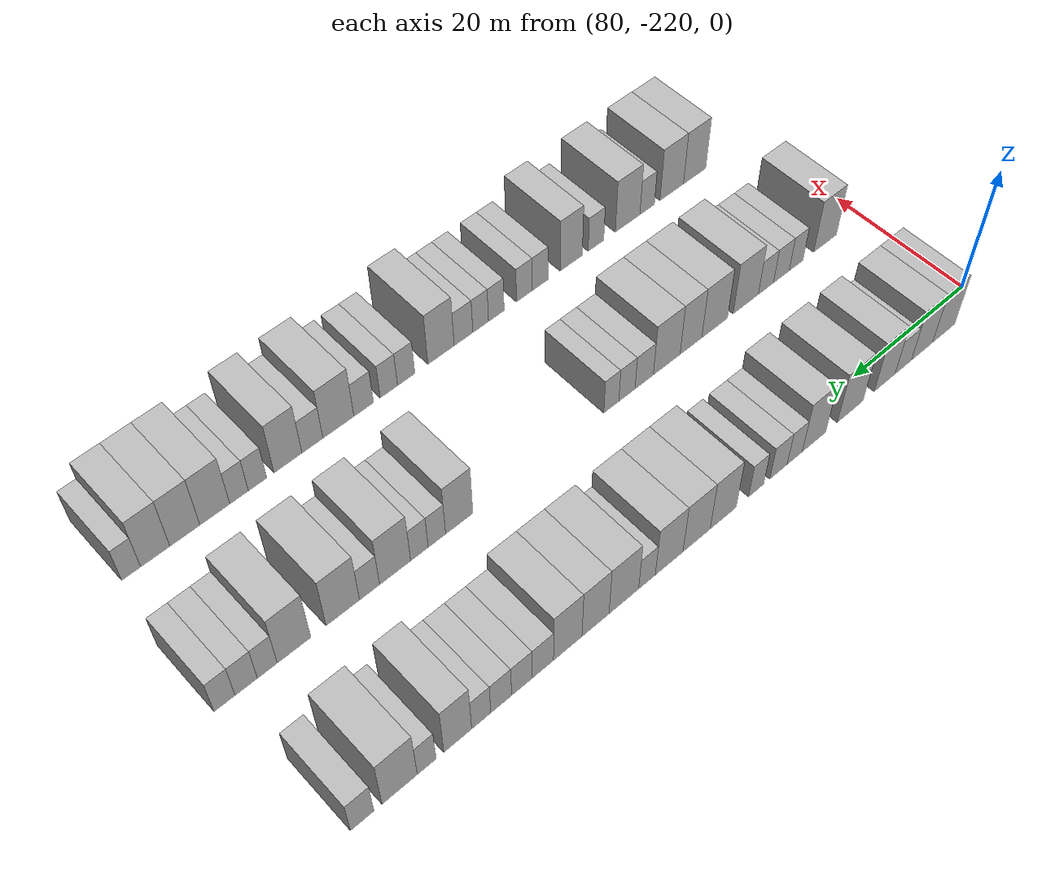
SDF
<sdf version="1.6">
 <world name="default">
  <model name="building_560">
   <static>1</static>
   <pose>82.0000 -212.7212 0 0.000000 0.000000 0.000000</pose>
   <link name="link">
    <pose>0 0 4.50 0 0 0</pose>
    <collision name="collision"><geometry><box><size>10.0000 4.1213 9.0000</size></box></geometry></collision>
    <visual name="visual">
     <cast_shadows>0</cast_shadows>
     <geometry><box><size>10.0000 4.1213 9.0000</size></box></geometry>
     <material>
      <script>
       <uri>model://HANNAS_wall/materials/scripts</uri>
       <uri>model://HANNAS_wall/materials/textures</uri>
       <name>vrc/HANNAS_wall</name>
      </script>
     </material>
    </visual>
   </link>
  </model>
  <model name="building_561">
   <static>1</static>
   <pose>82.0000 -208.7023 0 0.000000 0.000000 0.000000</pose>
   <link name="link">
    <pose>0 0 4.50 0 0 0</pose>
    <collision name="collision"><geometry><box><size>10.0000 3.9165 9.0000</size></box></geometry></collision>
    <visual name="visual">
     <cast_shadows>0</cast_shadows>
     <geometry><box><size>10.0000 3.9165 9.0000</size></box></geometry>
     <material>
      <script>
       <uri>model://HANNAS_wall/materials/scripts</uri>
       <uri>model://HANNAS_wall/materials/textures</uri>
       <name>vrc/HANNAS_wall</name>
      </script>
     </material>
    </visual>
   </link>
  </model>
  <model name="building_562">
   <static>1</static>
   <pose>82.0000 -205.2701 0 0.000000 0.000000 0.000000</pose>
   <link name="link">
    <pose>0 0 3.00 0 0 0</pose>
    <collision name="collision"><geometry><box><size>10.0000 2.9480 6.0000</size></box></geometry></collision>
    <visual name="visual">
     <cast_shadows>0</cast_shadows>
     <geometry><box><size>10.0000 2.9480 6.0000</size></box></geometry>
     <material>
      <script>
       <uri>model://HANNAS_wall/materials/scripts</uri>
       <uri>model://HANNAS_wall/materials/textures</uri>
       <name>vrc/HANNAS_wall</name>
      </script>
     </material>
    </visual>
   </link>
  </model>
  <model name="building_563">
   <static>1</static>
   <pose>82.0000 -201.9273 0 0.000000 0.000000 0.000000</pose>
   <link name="link">
    <pose>0 0 4.50 0 0 0</pose>
    <collision name="collision"><geometry><box><size>10.0000 3.7375 9.0000</size></box></geometry></collision>
    <visual name="visual">
     <cast_shadows>0</cast_shadows>
     <geometry><box><size>10.0000 3.7375 9.0000</size></box></geometry>
     <material>
      <script>
       <uri>model://HANNAS_wall/materials/scripts</uri>
       <uri>model://HANNAS_wall/materials/textures</uri>
       <name>vrc/HANNAS_wall</name>
      </script>
     </material>
    </visual>
   </link>
  </model>
  <model name="building_564">
   <static>1</static>
   <pose>82.0000 -195.8208 0 0.000000 0.000000 0.000000</pose>
   <link name="link">
    <pose>0 0 4.50 0 0 0</pose>
    <collision name="collision"><geometry><box><size>10.0000 4.4755 9.0000</size></box></geometry></collision>
    <visual name="visual">
     <cast_shadows>0</cast_shadows>
     <geometry><box><size>10.0000 4.4755 9.0000</size></box></geometry>
     <material>
      <script>
       <uri>model://HANNAS_wall/materials/scripts</uri>
       <uri>model://HANNAS_wall/materials/textures</uri>
       <name>vrc/HANNAS_wall</name>
      </script>
     </material>
    </visual>
   </link>
  </model>
  <model name="building_565">
   <static>1</static>
   <pose>82.0000 -189.5889 0 0.000000 0.000000 0.000000</pose>
   <link name="link">
    <pose>0 0 4.50 0 0 0</pose>
    <collision name="collision"><geometry><box><size>10.0000 3.9884 9.0000</size></box></geometry></collision>
    <visual name="visual">
     <cast_shadows>0</cast_shadows>
     <geometry><box><size>10.0000 3.9884 9.0000</size></box></geometry>
     <material>
      <script>
       <uri>model://HANNAS_wall/materials/scripts</uri>
       <uri>model://HANNAS_wall/materials/textures</uri>
       <name>vrc/HANNAS_wall</name>
      </script>
     </material>
    </visual>
   </link>
  </model>
  <model name="building_566">
   <static>1</static>
   <pose>82.0000 -186.3417 0 0.000000 0.000000 0.000000</pose>
   <link name="link">
    <pose>0 0 3.00 0 0 0</pose>
    <collision name="collision"><geometry><box><size>10.0000 2.5060 6.0000</size></box></geometry></collision>
    <visual name="visual">
     <cast_shadows>0</cast_shadows>
     <geometry><box><size>10.0000 2.5060 6.0000</size></box></geometry>
     <material>
      <script>
       <uri>model://HANNAS_wall/materials/scripts</uri>
       <uri>model://HANNAS_wall/materials/textures</uri>
       <name>vrc/HANNAS_wall</name>
      </script>
     </material>
    </visual>
   </link>
  </model>
  <model name="building_567">
   <static>1</static>
   <pose>82.0000 -183.6561 0 0.000000 0.000000 0.000000</pose>
   <link name="link">
    <pose>0 0 3.00 0 0 0</pose>
    <collision name="collision"><geometry><box><size>10.0000 2.8654 6.0000</size></box></geometry></collision>
    <visual name="visual">
     <cast_shadows>0</cast_shadows>
     <geometry><box><size>10.0000 2.8654 6.0000</size></box></geometry>
     <material>
      <script>
       <uri>model://HANNAS_wall/materials/scripts</uri>
       <uri>model://HANNAS_wall/materials/textures</uri>
       <name>vrc/HANNAS_wall</name>
      </script>
     </material>
    </visual>
   </link>
  </model>
  <model name="building_568">
   <static>1</static>
   <pose>82.0000 -179.9999 0 0.000000 0.000000 0.000000</pose>
   <link name="link">
    <pose>0 0 3.00 0 0 0</pose>
    <collision name="collision"><geometry><box><size>10.0000 2.4469 6.0000</size></box></geometry></collision>
    <visual name="visual">
     <cast_shadows>0</cast_shadows>
     <geometry><box><size>10.0000 2.4469 6.0000</size></box></geometry>
     <material>
      <script>
       <uri>model://HANNAS_wall/materials/scripts</uri>
       <uri>model://HANNAS_wall/materials/textures</uri>
       <name>vrc/HANNAS_wall</name>
      </script>
     </material>
    </visual>
   </link>
  </model>
  <model name="building_569">
   <static>1</static>
   <pose>82.0000 -174.7113 0 0.000000 0.000000 0.000000</pose>
   <link name="link">
    <pose>0 0 4.50 0 0 0</pose>
    <collision name="collision"><geometry><box><size>10.0000 4.1304 9.0000</size></box></geometry></collision>
    <visual name="visual">
     <cast_shadows>0</cast_shadows>
     <geometry><box><size>10.0000 4.1304 9.0000</size></box></geometry>
     <material>
      <script>
       <uri>model://HANNAS_wall/materials/scripts</uri>
       <uri>model://HANNAS_wall/materials/textures</uri>
       <name>vrc/HANNAS_wall</name>
      </script>
     </material>
    </visual>
   </link>
  </model>
  <model name="building_570">
   <static>1</static>
   <pose>82.0000 -170.5324 0 0.000000 0.000000 0.000000</pose>
   <link name="link">
    <pose>0 0 4.50 0 0 0</pose>
    <collision name="collision"><geometry><box><size>10.0000 4.2274 9.0000</size></box></geometry></collision>
    <visual name="visual">
     <cast_shadows>0</cast_shadows>
     <geometry><box><size>10.0000 4.2274 9.0000</size></box></geometry>
     <material>
      <script>
       <uri>model://HANNAS_wall/materials/scripts</uri>
       <uri>model://HANNAS_wall/materials/textures</uri>
       <name>vrc/HANNAS_wall</name>
      </script>
     </material>
    </visual>
   </link>
  </model>
  <model name="building_571">
   <static>1</static>
   <pose>82.0000 -166.3109 0 0.000000 0.000000 0.000000</pose>
   <link name="link">
    <pose>0 0 4.50 0 0 0</pose>
    <collision name="collision"><geometry><box><size>10.0000 4.2156 9.0000</size></box></geometry></collision>
    <visual name="visual">
     <cast_shadows>0</cast_shadows>
     <geometry><box><size>10.0000 4.2156 9.0000</size></box></geometry>
     <material>
      <script>
       <uri>model://HANNAS_wall/materials/scripts</uri>
       <uri>model://HANNAS_wall/materials/textures</uri>
       <name>vrc/HANNAS_wall</name>
      </script>
     </material>
    </visual>
   </link>
  </model>
  <model name="building_572">
   <static>1</static>
   <pose>82.0000 -162.9552 0 0.000000 0.000000 0.000000</pose>
   <link name="link">
    <pose>0 0 3.00 0 0 0</pose>
    <collision name="collision"><geometry><box><size>10.0000 2.4959 6.0000</size></box></geometry></collision>
    <visual name="visual">
     <cast_shadows>0</cast_shadows>
     <geometry><box><size>10.0000 2.4959 6.0000</size></box></geometry>
     <material>
      <script>
       <uri>model://HANNAS_wall/materials/scripts</uri>
       <uri>model://HANNAS_wall/materials/textures</uri>
       <name>vrc/HANNAS_wall</name>
      </script>
     </material>
    </visual>
   </link>
  </model>
  <model name="building_573">
   <static>1</static>
   <pose>82.0000 -159.5243 0 0.000000 0.000000 0.000000</pose>
   <link name="link">
    <pose>0 0 4.50 0 0 0</pose>
    <collision name="collision"><geometry><box><size>10.0000 4.3659 9.0000</size></box></geometry></collision>
    <visual name="visual">
     <cast_shadows>0</cast_shadows>
     <geometry><box><size>10.0000 4.3659 9.0000</size></box></geometry>
     <material>
      <script>
       <uri>model://HANNAS_wall/materials/scripts</uri>
       <uri>model://HANNAS_wall/materials/textures</uri>
       <name>vrc/HANNAS_wall</name>
      </script>
     </material>
    </visual>
   </link>
  </model>
  <model name="building_574">
   <static>1</static>
   <pose>82.0000 -155.3873 0 0.000000 0.000000 0.000000</pose>
   <link name="link">
    <pose>0 0 4.50 0 0 0</pose>
    <collision name="collision"><geometry><box><size>10.0000 3.9081 9.0000</size></box></geometry></collision>
    <visual name="visual">
     <cast_shadows>0</cast_shadows>
     <geometry><box><size>10.0000 3.9081 9.0000</size></box></geometry>
     <material>
      <script>
       <uri>model://HANNAS_wall/materials/scripts</uri>
       <uri>model://HANNAS_wall/materials/textures</uri>
       <name>vrc/HANNAS_wall</name>
      </script>
     </material>
    </visual>
   </link>
  </model>
  <model name="building_575">
   <static>1</static>
   <pose>82.0000 -151.4127 0 0.000000 0.000000 0.000000</pose>
   <link name="link">
    <pose>0 0 4.50 0 0 0</pose>
    <collision name="collision"><geometry><box><size>10.0000 4.0412 9.0000</size></box></geometry></collision>
    <visual name="visual">
     <cast_shadows>0</cast_shadows>
     <geometry><box><size>10.0000 4.0412 9.0000</size></box></geometry>
     <material>
      <script>
       <uri>model://HANNAS_wall/materials/scripts</uri>
       <uri>model://HANNAS_wall/materials/textures</uri>
       <name>vrc/HANNAS_wall</name>
      </script>
     </material>
    </visual>
   </link>
  </model>
  <model name="building_576">
   <static>1</static>
   <pose>82.0000 -147.9124 0 0.000000 0.000000 0.000000</pose>
   <link name="link">
    <pose>0 0 3.00 0 0 0</pose>
    <collision name="collision"><geometry><box><size>10.0000 2.9593 6.0000</size></box></geometry></collision>
    <visual name="visual">
     <cast_shadows>0</cast_shadows>
     <geometry><box><size>10.0000 2.9593 6.0000</size></box></geometry>
     <material>
      <script>
       <uri>model://HANNAS_wall/materials/scripts</uri>
       <uri>model://HANNAS_wall/materials/textures</uri>
       <name>vrc/HANNAS_wall</name>
      </script>
     </material>
    </visual>
   </link>
  </model>
  <model name="building_577">
   <static>1</static>
   <pose>82.0000 -145.0148 0 0.000000 0.000000 0.000000</pose>
   <link name="link">
    <pose>0 0 3.00 0 0 0</pose>
    <collision name="collision"><geometry><box><size>10.0000 2.8359 6.0000</size></box></geometry></collision>
    <visual name="visual">
     <cast_shadows>0</cast_shadows>
     <geometry><box><size>10.0000 2.8359 6.0000</size></box></geometry>
     <material>
      <script>
       <uri>model://HANNAS_wall/materials/scripts</uri>
       <uri>model://HANNAS_wall/materials/textures</uri>
       <name>vrc/HANNAS_wall</name>
      </script>
     </material>
    </visual>
   </link>
  </model>
  <model name="building_578">
   <static>1</static>
   <pose>82.0000 -142.1846 0 0.000000 0.000000 0.000000</pose>
   <link name="link">
    <pose>0 0 3.00 0 0 0</pose>
    <collision name="collision"><geometry><box><size>10.0000 2.8244 6.0000</size></box></geometry></collision>
    <visual name="visual">
     <cast_shadows>0</cast_shadows>
     <geometry><box><size>10.0000 2.8244 6.0000</size></box></geometry>
     <material>
      <script>
       <uri>model://HANNAS_wall/materials/scripts</uri>
       <uri>model://HANNAS_wall/materials/textures</uri>
       <name>vrc/HANNAS_wall</name>
      </script>
     </material>
    </visual>
   </link>
  </model>
  <model name="building_579">
   <static>1</static>
   <pose>82.0000 -139.4995 0 0.000000 0.000000 0.000000</pose>
   <link name="link">
    <pose>0 0 3.00 0 0 0</pose>
    <collision name="collision"><geometry><box><size>10.0000 2.5458 6.0000</size></box></geometry></collision>
    <visual name="visual">
     <cast_shadows>0</cast_shadows>
     <geometry><box><size>10.0000 2.5458 6.0000</size></box></geometry>
     <material>
      <script>
       <uri>model://HANNAS_wall/materials/scripts</uri>
       <uri>model://HANNAS_wall/materials/textures</uri>
       <name>vrc/HANNAS_wall</name>
      </script>
     </material>
    </visual>
   </link>
  </model>
  <model name="building_580">
   <static>1</static>
   <pose>82.0000 -136.3912 0 0.000000 0.000000 0.000000</pose>
   <link name="link">
    <pose>0 0 4.50 0 0 0</pose>
    <collision name="collision"><geometry><box><size>10.0000 3.6709 9.0000</size></box></geometry></collision>
    <visual name="visual">
     <cast_shadows>0</cast_shadows>
     <geometry><box><size>10.0000 3.6709 9.0000</size></box></geometry>
     <material>
      <script>
       <uri>model://HANNAS_wall/materials/scripts</uri>
       <uri>model://HANNAS_wall/materials/textures</uri>
       <name>vrc/HANNAS_wall</name>
      </script>
     </material>
    </visual>
   </link>
  </model>
  <model name="building_581">
   <static>1</static>
   <pose>82.0000 -132.3411 0 0.000000 0.000000 0.000000</pose>
   <link name="link">
    <pose>0 0 3.00 0 0 0</pose>
    <collision name="collision"><geometry><box><size>10.0000 2.4294 6.0000</size></box></geometry></collision>
    <visual name="visual">
     <cast_shadows>0</cast_shadows>
     <geometry><box><size>10.0000 2.4294 6.0000</size></box></geometry>
     <material>
      <script>
       <uri>model://HANNAS_wall/materials/scripts</uri>
       <uri>model://HANNAS_wall/materials/textures</uri>
       <name>vrc/HANNAS_wall</name>
      </script>
     </material>
    </visual>
   </link>
  </model>
  <model name="building_582">
   <static>1</static>
   <pose>82.0000 -128.8916 0 0.000000 0.000000 0.000000</pose>
   <link name="link">
    <pose>0 0 4.50 0 0 0</pose>
    <collision name="collision"><geometry><box><size>10.0000 4.4695 9.0000</size></box></geometry></collision>
    <visual name="visual">
     <cast_shadows>0</cast_shadows>
     <geometry><box><size>10.0000 4.4695 9.0000</size></box></geometry>
     <material>
      <script>
       <uri>model://HANNAS_wall/materials/scripts</uri>
       <uri>model://HANNAS_wall/materials/textures</uri>
       <name>vrc/HANNAS_wall</name>
      </script>
     </material>
    </visual>
   </link>
  </model>
  <model name="building_583">
   <static>1</static>
   <pose>82.0000 -124.2024 0 0.000000 0.000000 0.000000</pose>
   <link name="link">
    <pose>0 0 3.00 0 0 0</pose>
    <collision name="collision"><geometry><box><size>10.0000 2.9090 6.0000</size></box></geometry></collision>
    <visual name="visual">
     <cast_shadows>0</cast_shadows>
     <geometry><box><size>10.0000 2.9090 6.0000</size></box></geometry>
     <material>
      <script>
       <uri>model://HANNAS_wall/materials/scripts</uri>
       <uri>model://HANNAS_wall/materials/textures</uri>
       <name>vrc/HANNAS_wall</name>
      </script>
     </material>
    </visual>
   </link>
  </model>
  <model name="building_730">
   <static>1</static>
   <pose>101.0000 -213.0917 0 0.000000 0.000000 0.000000</pose>
   <link name="link">
    <pose>0 0 4.50 0 0 0</pose>
    <collision name="collision"><geometry><box><size>10.0000 4.2503 9.0000</size></box></geometry></collision>
    <visual name="visual">
     <cast_shadows>0</cast_shadows>
     <geometry><box><size>10.0000 4.2503 9.0000</size></box></geometry>
     <material>
      <script>
       <uri>model://HANNAS_wall/materials/scripts</uri>
       <uri>model://HANNAS_wall/materials/textures</uri>
       <name>vrc/HANNAS_wall</name>
      </script>
     </material>
    </visual>
   </link>
  </model>
  <model name="building_731">
   <static>1</static>
   <pose>101.0000 -207.7131 0 0.000000 0.000000 0.000000</pose>
   <link name="link">
    <pose>0 0 3.00 0 0 0</pose>
    <collision name="collision"><geometry><box><size>10.0000 2.5070 6.0000</size></box></geometry></collision>
    <visual name="visual">
     <cast_shadows>0</cast_shadows>
     <geometry><box><size>10.0000 2.5070 6.0000</size></box></geometry>
     <material>
      <script>
       <uri>model://HANNAS_wall/materials/scripts</uri>
       <uri>model://HANNAS_wall/materials/textures</uri>
       <name>vrc/HANNAS_wall</name>
      </script>
     </material>
    </visual>
   </link>
  </model>
  <model name="building_732">
   <static>1</static>
   <pose>101.0000 -205.0413 0 0.000000 0.000000 0.000000</pose>
   <link name="link">
    <pose>0 0 3.00 0 0 0</pose>
    <collision name="collision"><geometry><box><size>10.0000 2.8366 6.0000</size></box></geometry></collision>
    <visual name="visual">
     <cast_shadows>0</cast_shadows>
     <geometry><box><size>10.0000 2.8366 6.0000</size></box></geometry>
     <material>
      <script>
       <uri>model://HANNAS_wall/materials/scripts</uri>
       <uri>model://HANNAS_wall/materials/textures</uri>
       <name>vrc/HANNAS_wall</name>
      </script>
     </material>
    </visual>
   </link>
  </model>
  <model name="building_733">
   <static>1</static>
   <pose>101.0000 -202.2657 0 0.000000 0.000000 0.000000</pose>
   <link name="link">
    <pose>0 0 3.00 0 0 0</pose>
    <collision name="collision"><geometry><box><size>10.0000 2.7144 6.0000</size></box></geometry></collision>
    <visual name="visual">
     <cast_shadows>0</cast_shadows>
     <geometry><box><size>10.0000 2.7144 6.0000</size></box></geometry>
     <material>
      <script>
       <uri>model://HANNAS_wall/materials/scripts</uri>
       <uri>model://HANNAS_wall/materials/textures</uri>
       <name>vrc/HANNAS_wall</name>
      </script>
     </material>
    </visual>
   </link>
  </model>
  <model name="building_734">
   <static>1</static>
   <pose>101.0000 -198.6866 0 0.000000 0.000000 0.000000</pose>
   <link name="link">
    <pose>0 0 4.50 0 0 0</pose>
    <collision name="collision"><geometry><box><size>10.0000 4.4439 9.0000</size></box></geometry></collision>
    <visual name="visual">
     <cast_shadows>0</cast_shadows>
     <geometry><box><size>10.0000 4.4439 9.0000</size></box></geometry>
     <material>
      <script>
       <uri>model://HANNAS_wall/materials/scripts</uri>
       <uri>model://HANNAS_wall/materials/textures</uri>
       <name>vrc/HANNAS_wall</name>
      </script>
     </material>
    </visual>
   </link>
  </model>
  <model name="building_735">
   <static>1</static>
   <pose>101.0000 -193.2550 0 0.000000 0.000000 0.000000</pose>
   <link name="link">
    <pose>0 0 4.50 0 0 0</pose>
    <collision name="collision"><geometry><box><size>10.0000 4.4194 9.0000</size></box></geometry></collision>
    <visual name="visual">
     <cast_shadows>0</cast_shadows>
     <geometry><box><size>10.0000 4.4194 9.0000</size></box></geometry>
     <material>
      <script>
       <uri>model://HANNAS_wall/materials/scripts</uri>
       <uri>model://HANNAS_wall/materials/textures</uri>
       <name>vrc/HANNAS_wall</name>
      </script>
     </material>
    </visual>
   </link>
  </model>
  <model name="building_736">
   <static>1</static>
   <pose>101.0000 -189.2058 0 0.000000 0.000000 0.000000</pose>
   <link name="link">
    <pose>0 0 4.50 0 0 0</pose>
    <collision name="collision"><geometry><box><size>10.0000 3.6789 9.0000</size></box></geometry></collision>
    <visual name="visual">
     <cast_shadows>0</cast_shadows>
     <geometry><box><size>10.0000 3.6789 9.0000</size></box></geometry>
     <material>
      <script>
       <uri>model://HANNAS_wall/materials/scripts</uri>
       <uri>model://HANNAS_wall/materials/textures</uri>
       <name>vrc/HANNAS_wall</name>
      </script>
     </material>
    </visual>
   </link>
  </model>
  <model name="building_737">
   <static>1</static>
   <pose>101.0000 -185.1418 0 0.000000 0.000000 0.000000</pose>
   <link name="link">
    <pose>0 0 4.50 0 0 0</pose>
    <collision name="collision"><geometry><box><size>10.0000 4.4492 9.0000</size></box></geometry></collision>
    <visual name="visual">
     <cast_shadows>0</cast_shadows>
     <geometry><box><size>10.0000 4.4492 9.0000</size></box></geometry>
     <material>
      <script>
       <uri>model://HANNAS_wall/materials/scripts</uri>
       <uri>model://HANNAS_wall/materials/textures</uri>
       <name>vrc/HANNAS_wall</name>
      </script>
     </material>
    </visual>
   </link>
  </model>
  <model name="building_738">
   <static>1</static>
   <pose>101.0000 -181.4185 0 0.000000 0.000000 0.000000</pose>
   <link name="link">
    <pose>0 0 3.00 0 0 0</pose>
    <collision name="collision"><geometry><box><size>10.0000 2.9974 6.0000</size></box></geometry></collision>
    <visual name="visual">
     <cast_shadows>0</cast_shadows>
     <geometry><box><size>10.0000 2.9974 6.0000</size></box></geometry>
     <material>
      <script>
       <uri>model://HANNAS_wall/materials/scripts</uri>
       <uri>model://HANNAS_wall/materials/textures</uri>
       <name>vrc/HANNAS_wall</name>
      </script>
     </material>
    </visual>
   </link>
  </model>
  <model name="building_739">
   <static>1</static>
   <pose>101.0000 -178.6067 0 0.000000 0.000000 0.000000</pose>
   <link name="link">
    <pose>0 0 3.00 0 0 0</pose>
    <collision name="collision"><geometry><box><size>10.0000 2.6262 6.0000</size></box></geometry></collision>
    <visual name="visual">
     <cast_shadows>0</cast_shadows>
     <geometry><box><size>10.0000 2.6262 6.0000</size></box></geometry>
     <material>
      <script>
       <uri>model://HANNAS_wall/materials/scripts</uri>
       <uri>model://HANNAS_wall/materials/textures</uri>
       <name>vrc/HANNAS_wall</name>
      </script>
     </material>
    </visual>
   </link>
  </model>
  <model name="building_740">
   <static>1</static>
   <pose>101.0000 -176.0919 0 0.000000 0.000000 0.000000</pose>
   <link name="link">
    <pose>0 0 3.00 0 0 0</pose>
    <collision name="collision"><geometry><box><size>10.0000 2.4033 6.0000</size></box></geometry></collision>
    <visual name="visual">
     <cast_shadows>0</cast_shadows>
     <geometry><box><size>10.0000 2.4033 6.0000</size></box></geometry>
     <material>
      <script>
       <uri>model://HANNAS_wall/materials/scripts</uri>
       <uri>model://HANNAS_wall/materials/textures</uri>
       <name>vrc/HANNAS_wall</name>
      </script>
     </material>
    </visual>
   </link>
  </model>
  <model name="building_741">
   <static>1</static>
   <pose>101.0000 -153.0102 0 0.000000 0.000000 0.000000</pose>
   <link name="link">
    <pose>0 0 4.50 0 0 0</pose>
    <collision name="collision"><geometry><box><size>10.0000 3.9201 9.0000</size></box></geometry></collision>
    <visual name="visual">
     <cast_shadows>0</cast_shadows>
     <geometry><box><size>10.0000 3.9201 9.0000</size></box></geometry>
     <material>
      <script>
       <uri>model://HANNAS_wall/materials/scripts</uri>
       <uri>model://HANNAS_wall/materials/textures</uri>
       <name>vrc/HANNAS_wall</name>
      </script>
     </material>
    </visual>
   </link>
  </model>
  <model name="building_742">
   <static>1</static>
   <pose>101.0000 -149.8137 0 0.000000 0.000000 0.000000</pose>
   <link name="link">
    <pose>0 0 3.00 0 0 0</pose>
    <collision name="collision"><geometry><box><size>10.0000 2.4729 6.0000</size></box></geometry></collision>
    <visual name="visual">
     <cast_shadows>0</cast_shadows>
     <geometry><box><size>10.0000 2.4729 6.0000</size></box></geometry>
     <material>
      <script>
       <uri>model://HANNAS_wall/materials/scripts</uri>
       <uri>model://HANNAS_wall/materials/textures</uri>
       <name>vrc/HANNAS_wall</name>
      </script>
     </material>
    </visual>
   </link>
  </model>
  <model name="building_743">
   <static>1</static>
   <pose>101.0000 -147.3478 0 0.000000 0.000000 0.000000</pose>
   <link name="link">
    <pose>0 0 3.00 0 0 0</pose>
    <collision name="collision"><geometry><box><size>10.0000 2.4589 6.0000</size></box></geometry></collision>
    <visual name="visual">
     <cast_shadows>0</cast_shadows>
     <geometry><box><size>10.0000 2.4589 6.0000</size></box></geometry>
     <material>
      <script>
       <uri>model://HANNAS_wall/materials/scripts</uri>
       <uri>model://HANNAS_wall/materials/textures</uri>
       <name>vrc/HANNAS_wall</name>
      </script>
     </material>
    </visual>
   </link>
  </model>
  <model name="building_744">
   <static>1</static>
   <pose>101.0000 -143.9737 0 0.000000 0.000000 0.000000</pose>
   <link name="link">
    <pose>0 0 4.50 0 0 0</pose>
    <collision name="collision"><geometry><box><size>10.0000 4.2894 9.0000</size></box></geometry></collision>
    <visual name="visual">
     <cast_shadows>0</cast_shadows>
     <geometry><box><size>10.0000 4.2894 9.0000</size></box></geometry>
     <material>
      <script>
       <uri>model://HANNAS_wall/materials/scripts</uri>
       <uri>model://HANNAS_wall/materials/textures</uri>
       <name>vrc/HANNAS_wall</name>
      </script>
     </material>
    </visual>
   </link>
  </model>
  <model name="building_745">
   <static>1</static>
   <pose>101.0000 -140.4650 0 0.000000 0.000000 0.000000</pose>
   <link name="link">
    <pose>0 0 3.00 0 0 0</pose>
    <collision name="collision"><geometry><box><size>10.0000 2.7279 6.0000</size></box></geometry></collision>
    <visual name="visual">
     <cast_shadows>0</cast_shadows>
     <geometry><box><size>10.0000 2.7279 6.0000</size></box></geometry>
     <material>
      <script>
       <uri>model://HANNAS_wall/materials/scripts</uri>
       <uri>model://HANNAS_wall/materials/textures</uri>
       <name>vrc/HANNAS_wall</name>
      </script>
     </material>
    </visual>
   </link>
  </model>
  <model name="building_746">
   <static>1</static>
   <pose>101.0000 -136.8620 0 0.000000 0.000000 0.000000</pose>
   <link name="link">
    <pose>0 0 4.50 0 0 0</pose>
    <collision name="collision"><geometry><box><size>10.0000 4.4781 9.0000</size></box></geometry></collision>
    <visual name="visual">
     <cast_shadows>0</cast_shadows>
     <geometry><box><size>10.0000 4.4781 9.0000</size></box></geometry>
     <material>
      <script>
       <uri>model://HANNAS_wall/materials/scripts</uri>
       <uri>model://HANNAS_wall/materials/textures</uri>
       <name>vrc/HANNAS_wall</name>
      </script>
     </material>
    </visual>
   </link>
  </model>
  <model name="building_747">
   <static>1</static>
   <pose>101.0000 -130.4529 0 0.000000 0.000000 0.000000</pose>
   <link name="link">
    <pose>0 0 4.50 0 0 0</pose>
    <collision name="collision"><geometry><box><size>10.0000 4.3402 9.0000</size></box></geometry></collision>
    <visual name="visual">
     <cast_shadows>0</cast_shadows>
     <geometry><box><size>10.0000 4.3402 9.0000</size></box></geometry>
     <material>
      <script>
       <uri>model://HANNAS_wall/materials/scripts</uri>
       <uri>model://HANNAS_wall/materials/textures</uri>
       <name>vrc/HANNAS_wall</name>
      </script>
     </material>
    </visual>
   </link>
  </model>
  <model name="building_748">
   <static>1</static>
   <pose>101.0000 -127.0179 0 0.000000 0.000000 0.000000</pose>
   <link name="link">
    <pose>0 0 3.00 0 0 0</pose>
    <collision name="collision"><geometry><box><size>10.0000 2.5299 6.0000</size></box></geometry></collision>
    <visual name="visual">
     <cast_shadows>0</cast_shadows>
     <geometry><box><size>10.0000 2.5299 6.0000</size></box></geometry>
     <material>
      <script>
       <uri>model://HANNAS_wall/materials/scripts</uri>
       <uri>model://HANNAS_wall/materials/textures</uri>
       <name>vrc/HANNAS_wall</name>
      </script>
     </material>
    </visual>
   </link>
  </model>
  <model name="building_749">
   <static>1</static>
   <pose>101.0000 -124.3508 0 0.000000 0.000000 0.000000</pose>
   <link name="link">
    <pose>0 0 3.00 0 0 0</pose>
    <collision name="collision"><geometry><box><size>10.0000 2.8043 6.0000</size></box></geometry></collision>
    <visual name="visual">
     <cast_shadows>0</cast_shadows>
     <geometry><box><size>10.0000 2.8043 6.0000</size></box></geometry>
     <material>
      <script>
       <uri>model://HANNAS_wall/materials/scripts</uri>
       <uri>model://HANNAS_wall/materials/textures</uri>
       <name>vrc/HANNAS_wall</name>
      </script>
     </material>
    </visual>
   </link>
  </model>
  <model name="building_750">
   <static>1</static>
   <pose>101.0000 -121.6426 0 0.000000 0.000000 0.000000</pose>
   <link name="link">
    <pose>0 0 3.00 0 0 0</pose>
    <collision name="collision"><geometry><box><size>10.0000 2.6121 6.0000</size></box></geometry></collision>
    <visual name="visual">
     <cast_shadows>0</cast_shadows>
     <geometry><box><size>10.0000 2.6121 6.0000</size></box></geometry>
     <material>
      <script>
       <uri>model://HANNAS_wall/materials/scripts</uri>
       <uri>model://HANNAS_wall/materials/textures</uri>
       <name>vrc/HANNAS_wall</name>
      </script>
     </material>
    </visual>
   </link>
  </model>
  <model name="building_909">
   <static>1</static>
   <pose>120.0000 -209.4309 0 0.000000 0.000000 0.000000</pose>
   <link name="link">
    <pose>0 0 4.50 0 0 0</pose>
    <collision name="collision"><geometry><box><size>10.0000 4.0896 9.0000</size></box></geometry></collision>
    <visual name="visual">
     <cast_shadows>0</cast_shadows>
     <geometry><box><size>10.0000 4.0896 9.0000</size></box></geometry>
     <material>
      <script>
       <uri>model://HANNAS_wall/materials/scripts</uri>
       <uri>model://HANNAS_wall/materials/textures</uri>
       <name>vrc/HANNAS_wall</name>
      </script>
     </material>
    </visual>
   </link>
  </model>
  <model name="building_910">
   <static>1</static>
   <pose>120.0000 -205.2483 0 0.000000 0.000000 0.000000</pose>
   <link name="link">
    <pose>0 0 4.50 0 0 0</pose>
    <collision name="collision"><geometry><box><size>10.0000 4.2755 9.0000</size></box></geometry></collision>
    <visual name="visual">
     <cast_shadows>0</cast_shadows>
     <geometry><box><size>10.0000 4.2755 9.0000</size></box></geometry>
     <material>
      <script>
       <uri>model://HANNAS_wall/materials/scripts</uri>
       <uri>model://HANNAS_wall/materials/textures</uri>
       <name>vrc/HANNAS_wall</name>
      </script>
     </material>
    </visual>
   </link>
  </model>
  <model name="building_911">
   <static>1</static>
   <pose>120.0000 -200.8216 0 0.000000 0.000000 0.000000</pose>
   <link name="link">
    <pose>0 0 3.00 0 0 0</pose>
    <collision name="collision"><geometry><box><size>10.0000 2.5779 6.0000</size></box></geometry></collision>
    <visual name="visual">
     <cast_shadows>0</cast_shadows>
     <geometry><box><size>10.0000 2.5779 6.0000</size></box></geometry>
     <material>
      <script>
       <uri>model://HANNAS_wall/materials/scripts</uri>
       <uri>model://HANNAS_wall/materials/textures</uri>
       <name>vrc/HANNAS_wall</name>
      </script>
     </material>
    </visual>
   </link>
  </model>
  <model name="building_912">
   <static>1</static>
   <pose>120.0000 -197.3666 0 0.000000 0.000000 0.000000</pose>
   <link name="link">
    <pose>0 0 4.50 0 0 0</pose>
    <collision name="collision"><geometry><box><size>10.0000 4.3322 9.0000</size></box></geometry></collision>
    <visual name="visual">
     <cast_shadows>0</cast_shadows>
     <geometry><box><size>10.0000 4.3322 9.0000</size></box></geometry>
     <material>
      <script>
       <uri>model://HANNAS_wall/materials/scripts</uri>
       <uri>model://HANNAS_wall/materials/textures</uri>
       <name>vrc/HANNAS_wall</name>
      </script>
     </material>
    </visual>
   </link>
  </model>
  <model name="building_913">
   <static>1</static>
   <pose>120.0000 -191.8602 0 0.000000 0.000000 0.000000</pose>
   <link name="link">
    <pose>0 0 3.00 0 0 0</pose>
    <collision name="collision"><geometry><box><size>10.0000 2.6805 6.0000</size></box></geometry></collision>
    <visual name="visual">
     <cast_shadows>0</cast_shadows>
     <geometry><box><size>10.0000 2.6805 6.0000</size></box></geometry>
     <material>
      <script>
       <uri>model://HANNAS_wall/materials/scripts</uri>
       <uri>model://HANNAS_wall/materials/textures</uri>
       <name>vrc/HANNAS_wall</name>
      </script>
     </material>
    </visual>
   </link>
  </model>
  <model name="building_914">
   <static>1</static>
   <pose>120.0000 -187.6414 0 0.000000 0.000000 0.000000</pose>
   <link name="link">
    <pose>0 0 4.50 0 0 0</pose>
    <collision name="collision"><geometry><box><size>10.0000 3.7572 9.0000</size></box></geometry></collision>
    <visual name="visual">
     <cast_shadows>0</cast_shadows>
     <geometry><box><size>10.0000 3.7572 9.0000</size></box></geometry>
     <material>
      <script>
       <uri>model://HANNAS_wall/materials/scripts</uri>
       <uri>model://HANNAS_wall/materials/textures</uri>
       <name>vrc/HANNAS_wall</name>
      </script>
     </material>
    </visual>
   </link>
  </model>
  <model name="building_915">
   <static>1</static>
   <pose>120.0000 -182.4574 0 0.000000 0.000000 0.000000</pose>
   <link name="link">
    <pose>0 0 3.00 0 0 0</pose>
    <collision name="collision"><geometry><box><size>10.0000 2.6108 6.0000</size></box></geometry></collision>
    <visual name="visual">
     <cast_shadows>0</cast_shadows>
     <geometry><box><size>10.0000 2.6108 6.0000</size></box></geometry>
     <material>
      <script>
       <uri>model://HANNAS_wall/materials/scripts</uri>
       <uri>model://HANNAS_wall/materials/textures</uri>
       <name>vrc/HANNAS_wall</name>
      </script>
     </material>
    </visual>
   </link>
  </model>
  <model name="building_916">
   <static>1</static>
   <pose>120.0000 -179.8548 0 0.000000 0.000000 0.000000</pose>
   <link name="link">
    <pose>0 0 3.00 0 0 0</pose>
    <collision name="collision"><geometry><box><size>10.0000 2.5943 6.0000</size></box></geometry></collision>
    <visual name="visual">
     <cast_shadows>0</cast_shadows>
     <geometry><box><size>10.0000 2.5943 6.0000</size></box></geometry>
     <material>
      <script>
       <uri>model://HANNAS_wall/materials/scripts</uri>
       <uri>model://HANNAS_wall/materials/textures</uri>
       <name>vrc/HANNAS_wall</name>
      </script>
     </material>
    </visual>
   </link>
  </model>
  <model name="building_917">
   <static>1</static>
   <pose>120.0000 -175.3053 0 0.000000 0.000000 0.000000</pose>
   <link name="link">
    <pose>0 0 3.00 0 0 0</pose>
    <collision name="collision"><geometry><box><size>10.0000 2.5047 6.0000</size></box></geometry></collision>
    <visual name="visual">
     <cast_shadows>0</cast_shadows>
     <geometry><box><size>10.0000 2.5047 6.0000</size></box></geometry>
     <material>
      <script>
       <uri>model://HANNAS_wall/materials/scripts</uri>
       <uri>model://HANNAS_wall/materials/textures</uri>
       <name>vrc/HANNAS_wall</name>
      </script>
     </material>
    </visual>
   </link>
  </model>
  <model name="building_918">
   <static>1</static>
   <pose>120.0000 -172.8109 0 0.000000 0.000000 0.000000</pose>
   <link name="link">
    <pose>0 0 3.00 0 0 0</pose>
    <collision name="collision"><geometry><box><size>10.0000 2.4841 6.0000</size></box></geometry></collision>
    <visual name="visual">
     <cast_shadows>0</cast_shadows>
     <geometry><box><size>10.0000 2.4841 6.0000</size></box></geometry>
     <material>
      <script>
       <uri>model://HANNAS_wall/materials/scripts</uri>
       <uri>model://HANNAS_wall/materials/textures</uri>
       <name>vrc/HANNAS_wall</name>
      </script>
     </material>
    </visual>
   </link>
  </model>
  <model name="building_919">
   <static>1</static>
   <pose>120.0000 -170.1027 0 0.000000 0.000000 0.000000</pose>
   <link name="link">
    <pose>0 0 3.00 0 0 0</pose>
    <collision name="collision"><geometry><box><size>10.0000 2.9324 6.0000</size></box></geometry></collision>
    <visual name="visual">
     <cast_shadows>0</cast_shadows>
     <geometry><box><size>10.0000 2.9324 6.0000</size></box></geometry>
     <material>
      <script>
       <uri>model://HANNAS_wall/materials/scripts</uri>
       <uri>model://HANNAS_wall/materials/textures</uri>
       <name>vrc/HANNAS_wall</name>
      </script>
     </material>
    </visual>
   </link>
  </model>
  <model name="building_920">
   <static>1</static>
   <pose>120.0000 -166.6044 0 0.000000 0.000000 0.000000</pose>
   <link name="link">
    <pose>0 0 4.50 0 0 0</pose>
    <collision name="collision"><geometry><box><size>10.0000 4.0642 9.0000</size></box></geometry></collision>
    <visual name="visual">
     <cast_shadows>0</cast_shadows>
     <geometry><box><size>10.0000 4.0642 9.0000</size></box></geometry>
     <material>
      <script>
       <uri>model://HANNAS_wall/materials/scripts</uri>
       <uri>model://HANNAS_wall/materials/textures</uri>
       <name>vrc/HANNAS_wall</name>
      </script>
     </material>
    </visual>
   </link>
  </model>
  <model name="building_921">
   <static>1</static>
   <pose>120.0000 -161.2722 0 0.000000 0.000000 0.000000</pose>
   <link name="link">
    <pose>0 0 3.00 0 0 0</pose>
    <collision name="collision"><geometry><box><size>10.0000 2.6002 6.0000</size></box></geometry></collision>
    <visual name="visual">
     <cast_shadows>0</cast_shadows>
     <geometry><box><size>10.0000 2.6002 6.0000</size></box></geometry>
     <material>
      <script>
       <uri>model://HANNAS_wall/materials/scripts</uri>
       <uri>model://HANNAS_wall/materials/textures</uri>
       <name>vrc/HANNAS_wall</name>
      </script>
     </material>
    </visual>
   </link>
  </model>
  <model name="building_922">
   <static>1</static>
   <pose>120.0000 -158.6755 0 0.000000 0.000000 0.000000</pose>
   <link name="link">
    <pose>0 0 3.00 0 0 0</pose>
    <collision name="collision"><geometry><box><size>10.0000 2.5930 6.0000</size></box></geometry></collision>
    <visual name="visual">
     <cast_shadows>0</cast_shadows>
     <geometry><box><size>10.0000 2.5930 6.0000</size></box></geometry>
     <material>
      <script>
       <uri>model://HANNAS_wall/materials/scripts</uri>
       <uri>model://HANNAS_wall/materials/textures</uri>
       <name>vrc/HANNAS_wall</name>
      </script>
     </material>
    </visual>
   </link>
  </model>
  <model name="building_923">
   <static>1</static>
   <pose>120.0000 -154.9453 0 0.000000 0.000000 0.000000</pose>
   <link name="link">
    <pose>0 0 3.00 0 0 0</pose>
    <collision name="collision"><geometry><box><size>10.0000 2.8674 6.0000</size></box></geometry></collision>
    <visual name="visual">
     <cast_shadows>0</cast_shadows>
     <geometry><box><size>10.0000 2.8674 6.0000</size></box></geometry>
     <material>
      <script>
       <uri>model://HANNAS_wall/materials/scripts</uri>
       <uri>model://HANNAS_wall/materials/textures</uri>
       <name>vrc/HANNAS_wall</name>
      </script>
     </material>
    </visual>
   </link>
  </model>
  <model name="building_924">
   <static>1</static>
   <pose>120.0000 -151.2682 0 0.000000 0.000000 0.000000</pose>
   <link name="link">
    <pose>0 0 4.50 0 0 0</pose>
    <collision name="collision"><geometry><box><size>10.0000 4.4869 9.0000</size></box></geometry></collision>
    <visual name="visual">
     <cast_shadows>0</cast_shadows>
     <geometry><box><size>10.0000 4.4869 9.0000</size></box></geometry>
     <material>
      <script>
       <uri>model://HANNAS_wall/materials/scripts</uri>
       <uri>model://HANNAS_wall/materials/textures</uri>
       <name>vrc/HANNAS_wall</name>
      </script>
     </material>
    </visual>
   </link>
  </model>
  <model name="building_925">
   <static>1</static>
   <pose>120.0000 -147.5315 0 0.000000 0.000000 0.000000</pose>
   <link name="link">
    <pose>0 0 3.00 0 0 0</pose>
    <collision name="collision"><geometry><box><size>10.0000 2.9864 6.0000</size></box></geometry></collision>
    <visual name="visual">
     <cast_shadows>0</cast_shadows>
     <geometry><box><size>10.0000 2.9864 6.0000</size></box></geometry>
     <material>
      <script>
       <uri>model://HANNAS_wall/materials/scripts</uri>
       <uri>model://HANNAS_wall/materials/textures</uri>
       <name>vrc/HANNAS_wall</name>
      </script>
     </material>
    </visual>
   </link>
  </model>
  <model name="building_926">
   <static>1</static>
   <pose>120.0000 -144.0803 0 0.000000 0.000000 0.000000</pose>
   <link name="link">
    <pose>0 0 4.50 0 0 0</pose>
    <collision name="collision"><geometry><box><size>10.0000 3.9162 9.0000</size></box></geometry></collision>
    <visual name="visual">
     <cast_shadows>0</cast_shadows>
     <geometry><box><size>10.0000 3.9162 9.0000</size></box></geometry>
     <material>
      <script>
       <uri>model://HANNAS_wall/materials/scripts</uri>
       <uri>model://HANNAS_wall/materials/textures</uri>
       <name>vrc/HANNAS_wall</name>
      </script>
     </material>
    </visual>
   </link>
  </model>
  <model name="building_927">
   <static>1</static>
   <pose>120.0000 -139.8616 0 0.000000 0.000000 0.000000</pose>
   <link name="link">
    <pose>0 0 3.00 0 0 0</pose>
    <collision name="collision"><geometry><box><size>10.0000 2.5211 6.0000</size></box></geometry></collision>
    <visual name="visual">
     <cast_shadows>0</cast_shadows>
     <geometry><box><size>10.0000 2.5211 6.0000</size></box></geometry>
     <material>
      <script>
       <uri>model://HANNAS_wall/materials/scripts</uri>
       <uri>model://HANNAS_wall/materials/textures</uri>
       <name>vrc/HANNAS_wall</name>
      </script>
     </material>
    </visual>
   </link>
  </model>
  <model name="building_928">
   <static>1</static>
   <pose>120.0000 -137.3408 0 0.000000 0.000000 0.000000</pose>
   <link name="link">
    <pose>0 0 3.00 0 0 0</pose>
    <collision name="collision"><geometry><box><size>10.0000 2.5206 6.0000</size></box></geometry></collision>
    <visual name="visual">
     <cast_shadows>0</cast_shadows>
     <geometry><box><size>10.0000 2.5206 6.0000</size></box></geometry>
     <material>
      <script>
       <uri>model://HANNAS_wall/materials/scripts</uri>
       <uri>model://HANNAS_wall/materials/textures</uri>
       <name>vrc/HANNAS_wall</name>
      </script>
     </material>
    </visual>
   </link>
  </model>
  <model name="building_929">
   <static>1</static>
   <pose>120.0000 -134.0776 0 0.000000 0.000000 0.000000</pose>
   <link name="link">
    <pose>0 0 4.50 0 0 0</pose>
    <collision name="collision"><geometry><box><size>10.0000 4.0058 9.0000</size></box></geometry></collision>
    <visual name="visual">
     <cast_shadows>0</cast_shadows>
     <geometry><box><size>10.0000 4.0058 9.0000</size></box></geometry>
     <material>
      <script>
       <uri>model://HANNAS_wall/materials/scripts</uri>
       <uri>model://HANNAS_wall/materials/textures</uri>
       <name>vrc/HANNAS_wall</name>
      </script>
     </material>
    </visual>
   </link>
  </model>
  <model name="building_930">
   <static>1</static>
   <pose>120.0000 -130.1010 0 0.000000 0.000000 0.000000</pose>
   <link name="link">
    <pose>0 0 4.50 0 0 0</pose>
    <collision name="collision"><geometry><box><size>10.0000 3.9474 9.0000</size></box></geometry></collision>
    <visual name="visual">
     <cast_shadows>0</cast_shadows>
     <geometry><box><size>10.0000 3.9474 9.0000</size></box></geometry>
     <material>
      <script>
       <uri>model://HANNAS_wall/materials/scripts</uri>
       <uri>model://HANNAS_wall/materials/textures</uri>
       <name>vrc/HANNAS_wall</name>
      </script>
     </material>
    </visual>
   </link>
  </model>
  <model name="building_931">
   <static>1</static>
   <pose>120.0000 -126.2424 0 0.000000 0.000000 0.000000</pose>
   <link name="link">
    <pose>0 0 4.50 0 0 0</pose>
    <collision name="collision"><geometry><box><size>10.0000 3.7697 9.0000</size></box></geometry></collision>
    <visual name="visual">
     <cast_shadows>0</cast_shadows>
     <geometry><box><size>10.0000 3.7697 9.0000</size></box></geometry>
     <material>
      <script>
       <uri>model://HANNAS_wall/materials/scripts</uri>
       <uri>model://HANNAS_wall/materials/textures</uri>
       <name>vrc/HANNAS_wall</name>
      </script>
     </material>
    </visual>
   </link>
  </model>
  <model name="building_932">
   <static>1</static>
   <pose>120.0000 -123.1445 0 0.000000 0.000000 0.000000</pose>
   <link name="link">
    <pose>0 0 3.00 0 0 0</pose>
    <collision name="collision"><geometry><box><size>10.0000 2.4261 6.0000</size></box></geometry></collision>
    <visual name="visual">
     <cast_shadows>0</cast_shadows>
     <geometry><box><size>10.0000 2.4261 6.0000</size></box></geometry>
     <material>
      <script>
       <uri>model://HANNAS_wall/materials/scripts</uri>
       <uri>model://HANNAS_wall/materials/textures</uri>
       <name>vrc/HANNAS_wall</name>
      </script>
     </material>
    </visual>
   </link>
  </model>
 </world>
</sdf>
